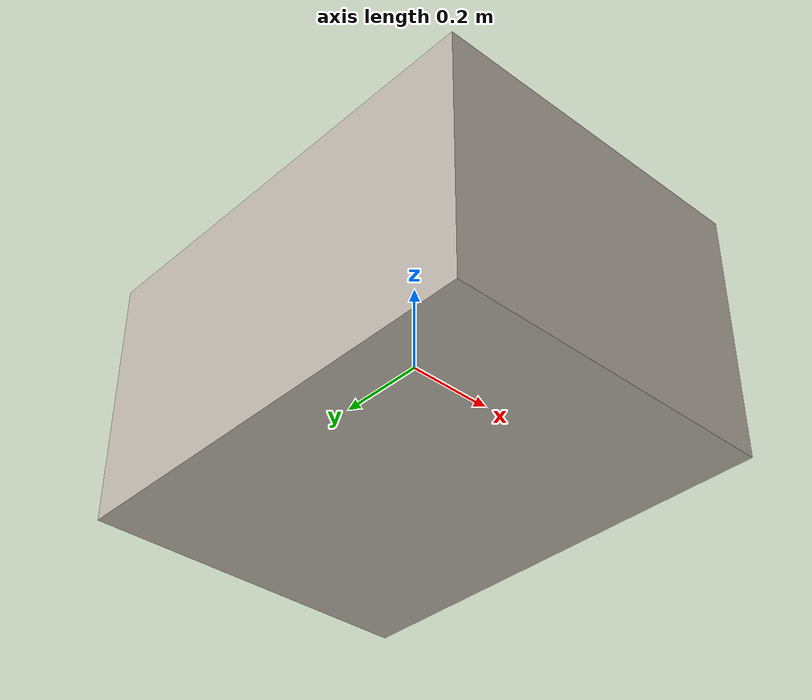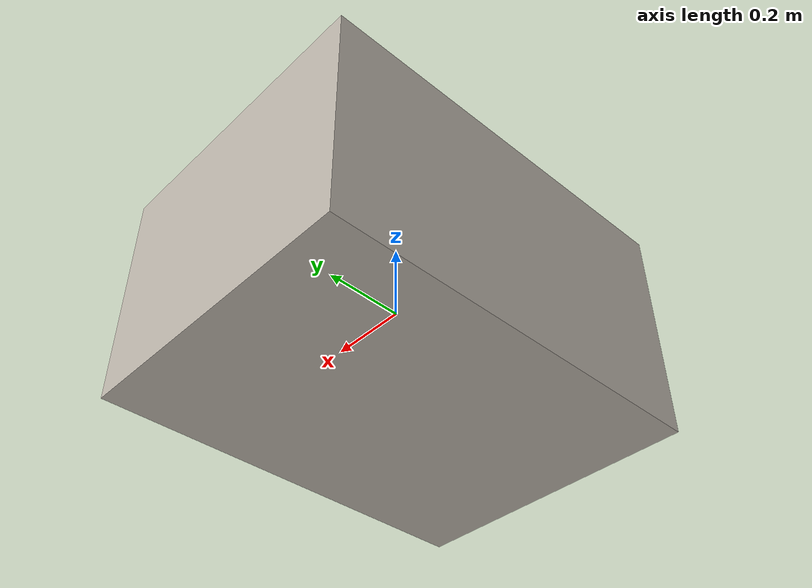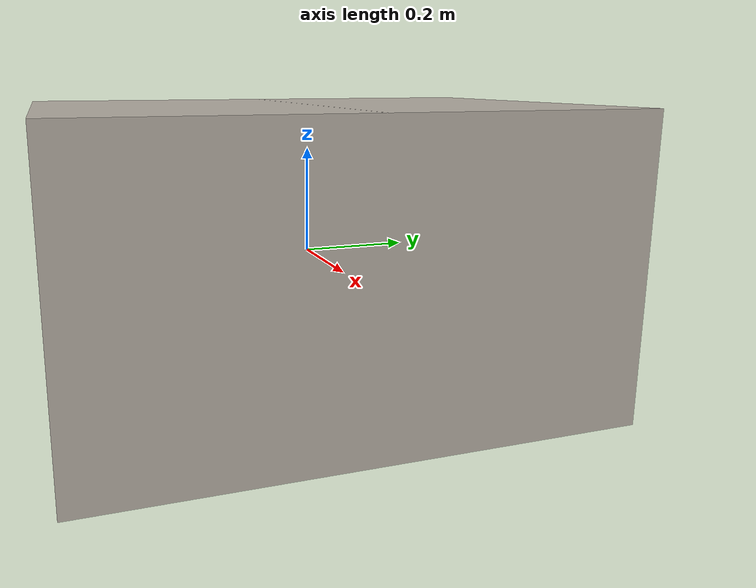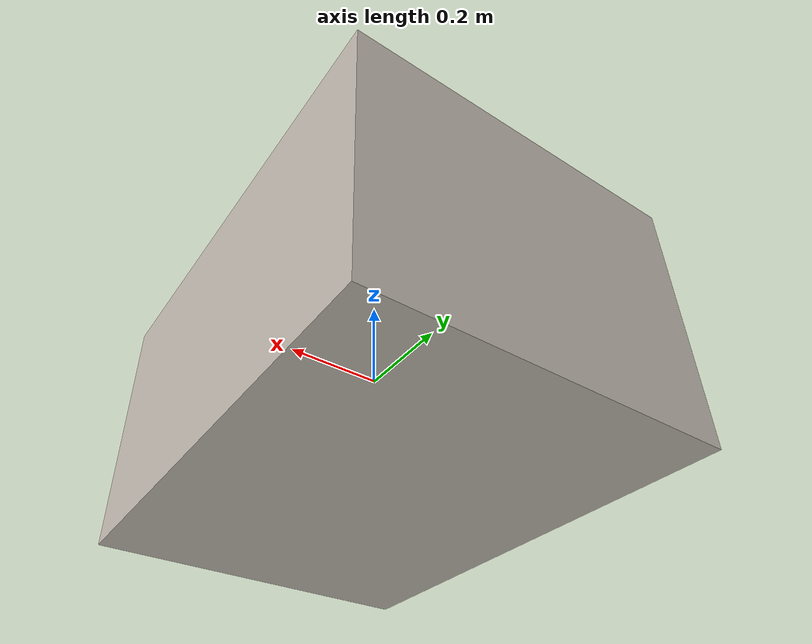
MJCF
<mujoco model="delivery_box">
  <asset>
  <texture file="visual/ceramic.png" name="tex-delivery_box" type="2d" />
  <material name="delivery_box" reflectance="0.5" texrepeat="1 1" texture="tex-delivery_box" texuniform="false" />
  <mesh file="visual/model_normalized_0.obj" name="model_normalized_0_vis" scale="1.0 1.0 1.0" /><mesh file="collision/model_normalized_collision_0.obj" name="model_normalized_collision_0._coll" scale="1.0 1.0 1.0" /><texture type="2d" name="Material.002" file="visual/Material.002.png" /><material name="Material.002" texture="Material.002" specular="0.4000000000000001" shininess="0.001" /></asset>
  <worldbody>
    <body>
      <body name="object">
      <geom solimp="0.998 0.998 0.001" solref="0.001 1" density="100" friction="0.95 0.3 0.1" type="mesh" mesh="model_normalized_0_vis" conaffinity="0" contype="0" group="1" material="Material.002" /><geom solimp="0.998 0.998 0.001" solref="0.001 1" density="100" friction="0.95 0.3 0.1" type="mesh" mesh="model_normalized_collision_0._coll" group="0" rgba="0.8 0.8 0.8 0.0" /></body>
      <site rgba="0 0 0 0" size="0.005" pos="-2.7755575615628914e-17 0.0 -0.28377045210012797" name="bottom_site" />
      <site rgba="0 0 0 0" size="0.005" pos="-2.7755575615628914e-17 0.0 0.2837704590079779" name="top_site" />
      <site rgba="0 0 0 0" size="0.005" pos="0.37464812621231325 0.5000000023026167 3.453924979357481e-09" name="horizontal_radius_site" />
    </body>
  </worldbody>
</mujoco>
